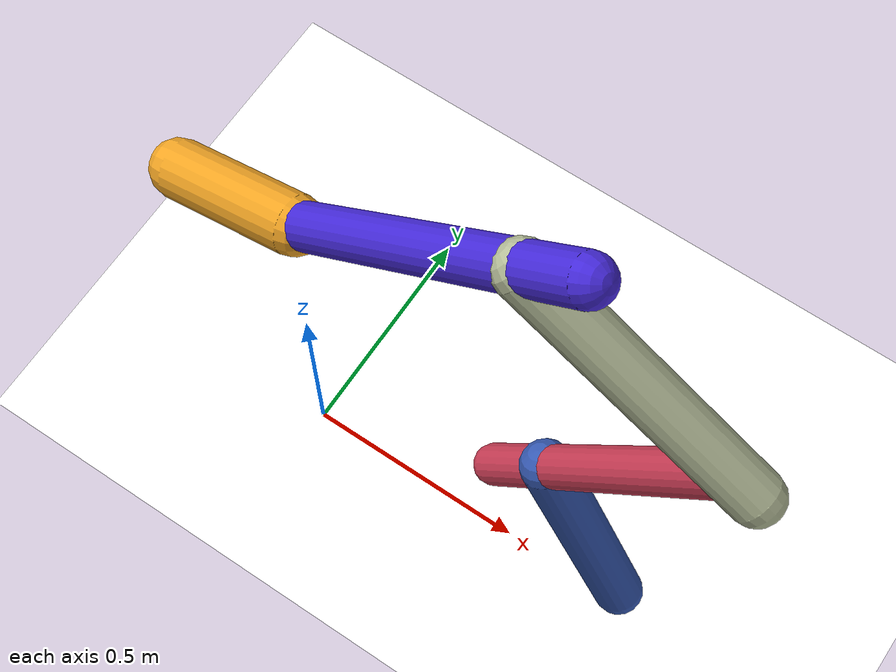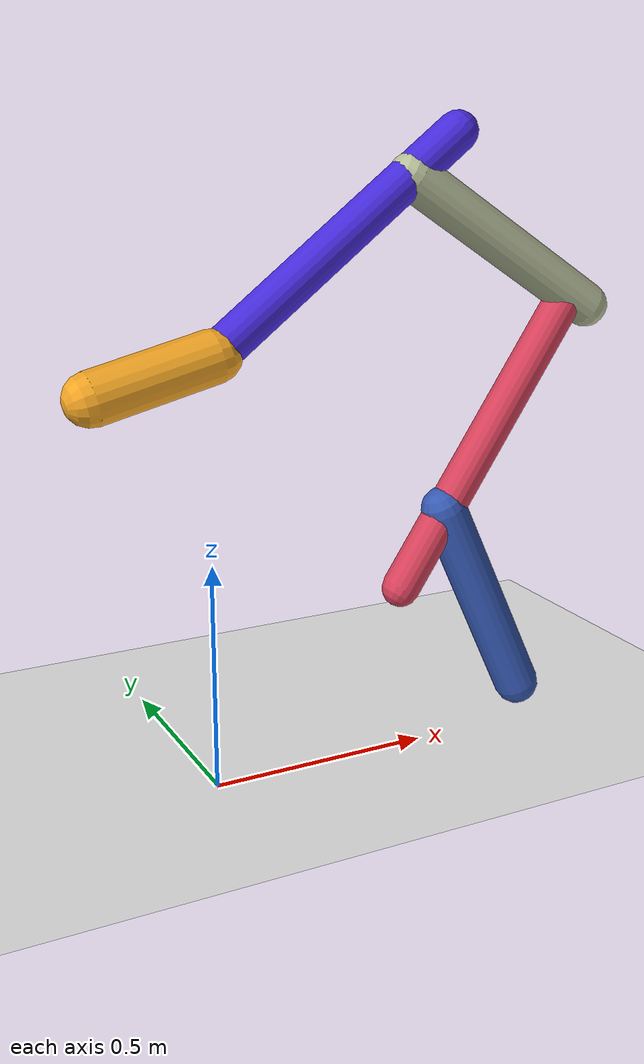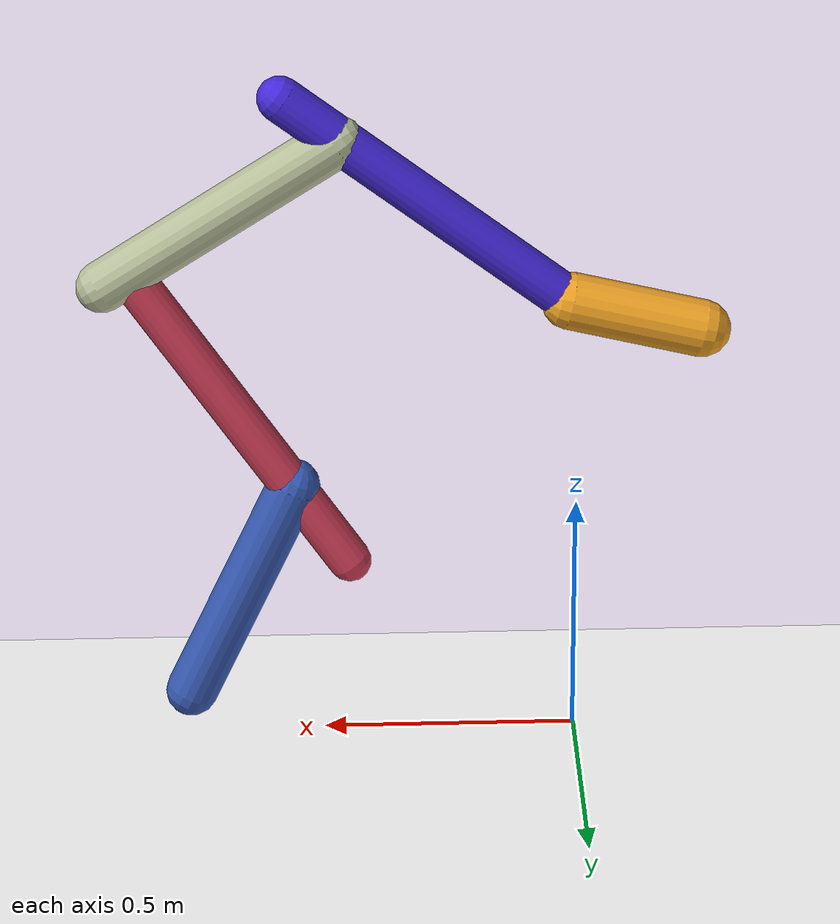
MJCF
<mujoco model="morphology">
  <option timestep="0.01"/>
  <default>
    <default class="/"/>
  </default>
  <asset>
    <texture name="texplane" type="2d" builtin="checker" rgb1="0.1 0.2 0.3" rgb2="0.2 0.3 0.4" width="300" height="300"/>
    <material name="MatPlane" class="/" texture="texplane" texrepeat="20 20" specular="1" shininess="1" reflectance="0.5"/>
  </asset>
  <worldbody>
    <light name="//unnamed_light_0" class="/" directional="true" pos="0 0 1.5" dir="0 0 -1.3" cutoff="1e+02" exponent="1" diffuse="1 1 1" specular="0.1 0.1 0.1"/>
    <geom name="ground" class="/" type="plane" size="15 15 0.5" material="MatPlane" rgba="1 1 1 1"/>
    <body name="body" pos="0 0 0.93">
      <geom name="geom0" class="/" type="capsule" contype="1" conaffinity="1" condim="3" size="0.045" rgba="0.27 0.16 0.85 1" friction="0.4 0.1 0.1" fromto="0 0 0 0.58 0 0.45"/>
      <body name="body1" pos="0.018 0 0.014">
        <geom name="geom1" class="/" type="capsule" contype="1" conaffinity="1" condim="3" size="0.057" rgba="0.94 0.64 0.14 1" friction="0.4 0.1 0.1" fromto="0 0 0 -0.26 0 -0.064"/>
        <joint name="joint1" class="/" type="hinge" axis="0 1 0" limited="true" stiffness="20" range="-55 55" armature="0.1" damping="2"/>
      </body>
      <body name="body2" pos="0.47 0 0.36">
        <geom name="geom2" class="/" type="capsule" contype="1" conaffinity="1" condim="3" size="0.051" rgba="0.71 0.74 0.6 1" friction="0.4 0.1 0.1" fromto="0 0 0 0.46 0 -0.3"/>
        <body name="body3" pos="0.41 0 -0.27">
          <geom name="geom3" class="/" type="capsule" contype="1" conaffinity="1" condim="3" size="0.043" rgba="0.83 0.25 0.35 1" friction="0.4 0.1 0.1" fromto="0 0 0 -0.43 0 -0.64"/>
          <body name="body4" pos="-0.32 0 -0.47">
            <geom name="geom4" class="/" type="capsule" contype="1" conaffinity="1" condim="3" size="0.052" rgba="0.21 0.35 0.7 1" friction="0.4 0.1 0.1" fromto="0 0 0 0.21 0 -0.46"/>
            <joint name="joint4" class="/" type="hinge" axis="0 1 0" limited="true" stiffness="20" range="-67 67" armature="0.1" damping="2"/>
          </body>
          <joint name="joint3" class="/" type="hinge" axis="0 1 0" limited="true" stiffness="20" range="-52 52" armature="0.1" damping="2"/>
        </body>
        <joint name="joint2" class="/" type="hinge" axis="0 1 0" limited="true" stiffness="20" range="-57 57" armature="0.1" damping="2"/>
      </body>
      <joint name="rootx" class="/" type="slide" axis="1 0 0" limited="false" stiffness="0" armature="0" damping="0"/>
      <joint name="rootz" class="/" type="slide" axis="0 0 1" limited="false" stiffness="0" armature="0" damping="0"/>
      <joint name="rooty" class="/" type="hinge" axis="0 1 0" limited="false" stiffness="0" armature="0" damping="0"/>
    </body>
  </worldbody>
  <actuator>
    <motor name="motor1" class="/" ctrllimited="true" ctrlrange="-1 1" gear="1.5e+02" joint="joint1"/>
    <motor name="motor4" class="/" ctrllimited="true" ctrlrange="-1 1" gear="1.8e+02" joint="joint4"/>
    <motor name="motor3" class="/" ctrllimited="true" ctrlrange="-1 1" gear="1.6e+02" joint="joint3"/>
    <motor name="motor2" class="/" ctrllimited="true" ctrlrange="-1 1" gear="1.1e+02" joint="joint2"/>
  </actuator>
  <sensor>
    <subtreelinvel name="velocity" body="body"/>
  </sensor>
</mujoco>
